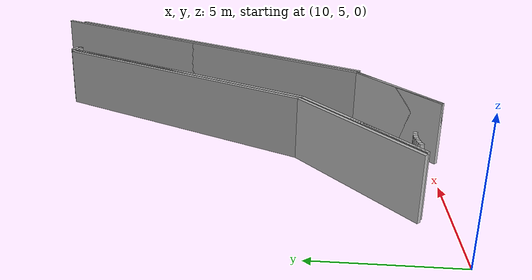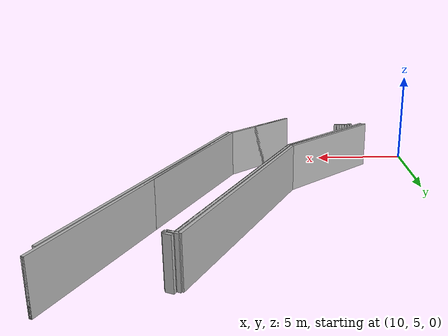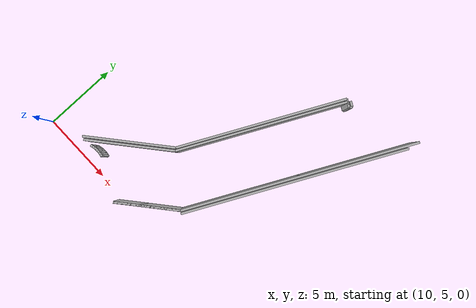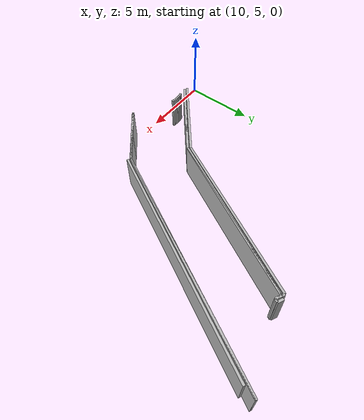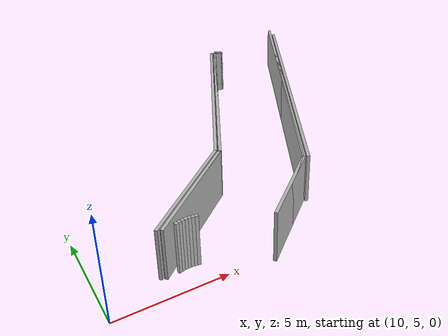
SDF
<sdf version="1.6">
 <model name="sps_1000">
  <static>1</static>
  <allow_auto_disable>0</allow_auto_disable>
  <link name="Wall762">
   <collision name="collision"><geometry><box><size>0.399776 0.15 2.5</size></box></geometry></collision>
   <visual name="visual">
    <geometry><box><size>0.399776 0.15 2.5</size></box></geometry>
    <transparency>0.0</transparency>
   </visual>
   <pose>22.5817 20.2371 1.25 0 -0 2.68122</pose>
  </link>
  <link name="Wall1687">
   <collision name="collision"><geometry><box><size>0.200488 0.15 2.5</size></box></geometry></collision>
   <visual name="visual">
    <geometry><box><size>0.200488 0.15 2.5</size></box></geometry>
    <transparency>0.0</transparency>
   </visual>
   <pose>22.8054 20.2381 1.25 0 0 -2.03104</pose>
  </link>
  <link name="Wall7682">
   <collision name="collision"><geometry><box><size>5.98768 0.15 2.5</size></box></geometry></collision>
   <visual name="visual">
    <geometry><box><size>5.98768 0.15 2.5</size></box></geometry>
    <transparency>0.0</transparency>
   </visual>
   <pose>14.9694 7.98469 1.25 0 -0 0.709969</pose>
  </link>
  <link name="Wall7683">
   <collision name="collision"><geometry><box><size>11.602 0.15 2.5</size></box></geometry></collision>
   <visual name="visual">
    <geometry><box><size>11.602 0.15 2.5</size></box></geometry>
    <transparency>0.0</transparency>
   </visual>
   <pose>19.818 15.1327 1.25 0 -0 1.11026</pose>
  </link>
  <link name="Wall7684">
   <collision name="collision"><geometry><box><size>0.4072 0.15 2.5</size></box></geometry></collision>
   <visual name="visual">
    <geometry><box><size>0.4072 0.15 2.5</size></box></geometry>
    <transparency>0.0</transparency>
   </visual>
   <pose>22.5785 20.2388 1.25 0 0 -0.460698</pose>
  </link>
  <link name="Wall7685">
   <collision name="collision"><geometry><box><size>0.200488 0.15 2.5</size></box></geometry></collision>
   <visual name="visual">
    <geometry><box><size>0.200488 0.15 2.5</size></box></geometry>
    <transparency>0.0</transparency>
   </visual>
   <pose>22.8054 20.2381 1.25 0 -0 1.11055</pose>
  </link>
  <link name="Wall7693">
   <collision name="collision"><geometry><box><size>16.1011 0.15 2.5</size></box></geometry></collision>
   <visual name="visual">
    <geometry><box><size>16.1011 0.15 2.5</size></box></geometry>
    <transparency>0.0</transparency>
   </visual>
   <pose>23.911 14.8062 1.25 0 0 -2.03031</pose>
  </link>
  <link name="Wall7694">
   <collision name="collision"><geometry><box><size>4.41077 0.15 2.5</size></box></geometry></collision>
   <visual name="visual">
    <geometry><box><size>4.41077 0.15 2.5</size></box></geometry>
    <transparency>0.0</transparency>
   </visual>
   <pose>18.668 6.15321 1.25 0 0 -2.43162</pose>
  </link>
  <link name="Wall15369">
   <collision name="collision"><geometry><box><size>6.09726 0.15 2.5</size></box></geometry></collision>
   <visual name="visual">
    <geometry><box><size>6.09726 0.15 2.5</size></box></geometry>
    <transparency>0.0</transparency>
   </visual>
   <pose>14.8043 8.1067 1.25 0 -0 0.709992</pose>
  </link>
  <link name="Wall15370">
   <collision name="collision"><geometry><box><size>11.5155 0.15 2.5</size></box></geometry></collision>
   <visual name="visual">
    <geometry><box><size>11.5155 0.15 2.5</size></box></geometry>
    <transparency>0.0</transparency>
   </visual>
   <pose>19.6699 15.2544 1.25 0 -0 1.11128</pose>
  </link>
  <link name="Wall15375">
   <collision name="collision"><geometry><box><size>15.3705 0.15 2.5</size></box></geometry></collision>
   <visual name="visual">
    <geometry><box><size>15.3705 0.15 2.5</size></box></geometry>
    <transparency>0.0</transparency>
   </visual>
   <pose>23.9101 14.3536 1.25 0 -0 1.11131</pose>
  </link>
  <link name="Wall21959">
   <collision name="collision"><geometry><box><size>0.148446 0.15 2.5</size></box></geometry></collision>
   <visual name="visual">
    <geometry><box><size>0.148446 0.15 2.5</size></box></geometry>
    <transparency>0.0</transparency>
   </visual>
   <pose>13.3507 6.14699 1.25 0 -0 0.304847</pose>
  </link>
  <link name="Wall21960">
   <collision name="collision"><geometry><box><size>0.148279 0.15 2.5</size></box></geometry></collision>
   <visual name="visual">
    <geometry><box><size>0.148279 0.15 2.5</size></box></geometry>
    <transparency>0.0</transparency>
   </visual>
   <pose>13.4939 6.18529 1.25 0 -0 0.217821</pose>
  </link>
  <link name="Wall21961">
   <collision name="collision"><geometry><box><size>0.148309 0.15 2.5</size></box></geometry></collision>
   <visual name="visual">
    <geometry><box><size>0.148309 0.15 2.5</size></box></geometry>
    <transparency>0.0</transparency>
   </visual>
   <pose>13.6398 6.21101 1.25 0 -0 0.131246</pose>
  </link>
  <link name="Wall21962">
   <collision name="collision"><geometry><box><size>0.148329 0.15 2.5</size></box></geometry></collision>
   <visual name="visual">
    <geometry><box><size>0.148329 0.15 2.5</size></box></geometry>
    <transparency>0.0</transparency>
   </visual>
   <pose>13.7874 6.22389 1.25 0 -0 0.0428074</pose>
  </link>
  <link name="Wall21963">
   <collision name="collision"><geometry><box><size>0.14834 0.15 2.5</size></box></geometry></collision>
   <visual name="visual">
    <geometry><box><size>0.14834 0.15 2.5</size></box></geometry>
    <transparency>0.0</transparency>
   </visual>
   <pose>13.9356 6.22377 1.25 0 0 -0.0444518</pose>
  </link>
  <link name="Wall21964">
   <collision name="collision"><geometry><box><size>0.148249 0.15 2.5</size></box></geometry></collision>
   <visual name="visual">
    <geometry><box><size>0.148249 0.15 2.5</size></box></geometry>
    <transparency>0.0</transparency>
   </visual>
   <pose>14.0832 6.21077 1.25 0 0 -0.1313</pose>
  </link>
  <link name="Wall21965">
   <collision name="collision"><geometry><box><size>0.148326 0.15 2.5</size></box></geometry></collision>
   <visual name="visual">
    <geometry><box><size>0.148326 0.15 2.5</size></box></geometry>
    <transparency>0.0</transparency>
   </visual>
   <pose>14.2291 6.18507 1.25 0 0 -0.21733</pose>
  </link>
  <link name="Wall21970">
   <collision name="collision"><geometry><box><size>0.00272958 0.15 2.5</size></box></geometry></collision>
   <visual name="visual">
    <geometry><box><size>0.00272958 0.15 2.5</size></box></geometry>
    <transparency>0.0</transparency>
   </visual>
   <pose>22.4015 20.3265 1.25 0 -0 2.67795</pose>
  </link>
  <link name="Wall21971">
   <collision name="collision"><geometry><box><size>0.197349 0.15 2.5</size></box></geometry></collision>
   <visual name="visual">
    <geometry><box><size>0.197349 0.15 2.5</size></box></geometry>
    <transparency>0.0</transparency>
   </visual>
   <pose>22.3119 20.371 1.25 0 -0 2.68071</pose>
  </link>
  <link name="Wall26292">
   <collision name="collision"><geometry><box><size>6.03744 0.15 2.5</size></box></geometry></collision>
   <visual name="visual">
    <geometry><box><size>6.03744 0.15 2.5</size></box></geometry>
    <transparency>0.0</transparency>
   </visual>
   <pose>14.9882 8.00099 1.25 0 -0 0.710004</pose>
  </link>
  <link name="Wall26293">
   <collision name="collision"><geometry><box><size>11.5559 0.15 2.5</size></box></geometry></collision>
   <visual name="visual">
    <geometry><box><size>11.5559 0.15 2.5</size></box></geometry>
    <transparency>0.0</transparency>
   </visual>
   <pose>19.84 15.1473 1.25 0 -0 1.11128</pose>
  </link>
  <link name="Wall30876">
   <collision name="collision"><geometry><box><size>0.402534 0.15 2.5</size></box></geometry></collision>
   <visual name="visual">
    <geometry><box><size>0.402534 0.15 2.5</size></box></geometry>
    <transparency>0.0</transparency>
   </visual>
   <pose>22.6695 20.4171 1.25 0 -0 2.68242</pose>
  </link>
  <link name="Wall35040">
   <collision name="collision"><geometry><box><size>4.41077 0.15 2.5</size></box></geometry></collision>
   <visual name="visual">
    <geometry><box><size>4.41077 0.15 2.5</size></box></geometry>
    <transparency>0.0</transparency>
   </visual>
   <pose>18.668 6.15321 1.25 0 -0 0.709974</pose>
  </link>
  <link name="Wall35041">
   <collision name="collision"><geometry><box><size>16.1011 0.15 2.5</size></box></geometry></collision>
   <visual name="visual">
    <geometry><box><size>16.1011 0.15 2.5</size></box></geometry>
    <transparency>0.0</transparency>
   </visual>
   <pose>23.911 14.8062 1.25 0 -0 1.11129</pose>
  </link>
 </model>
</sdf>
